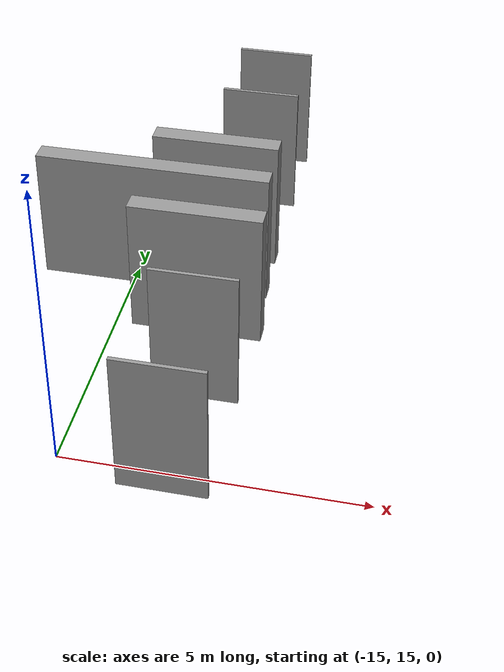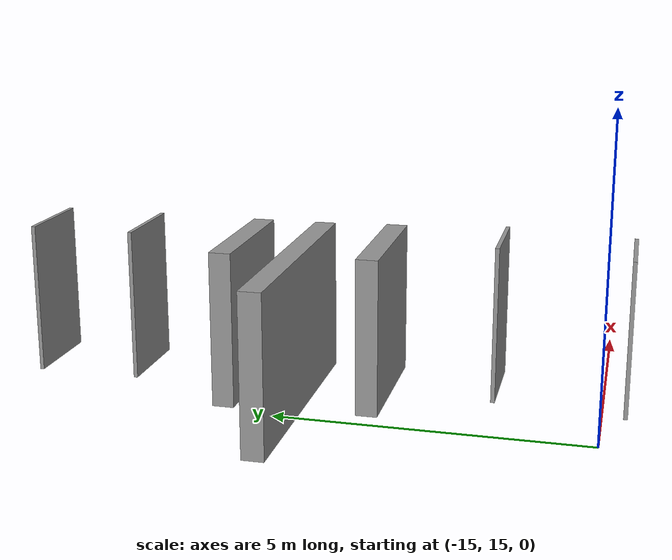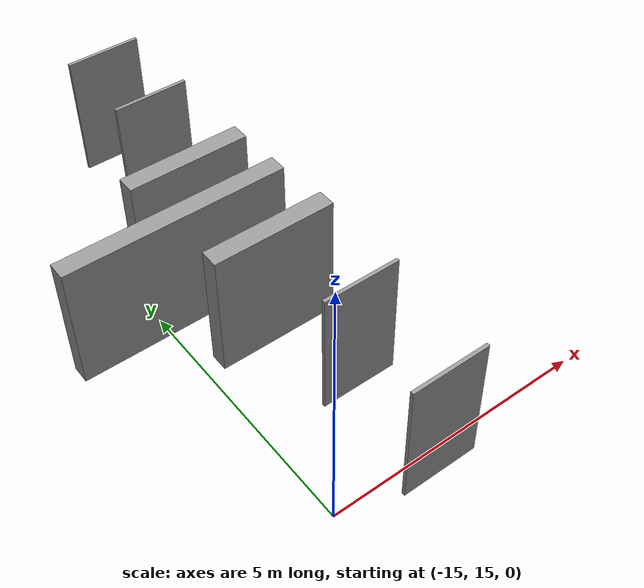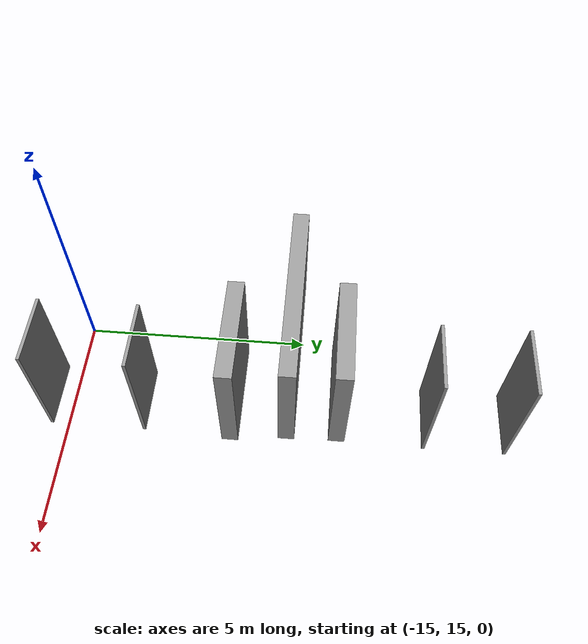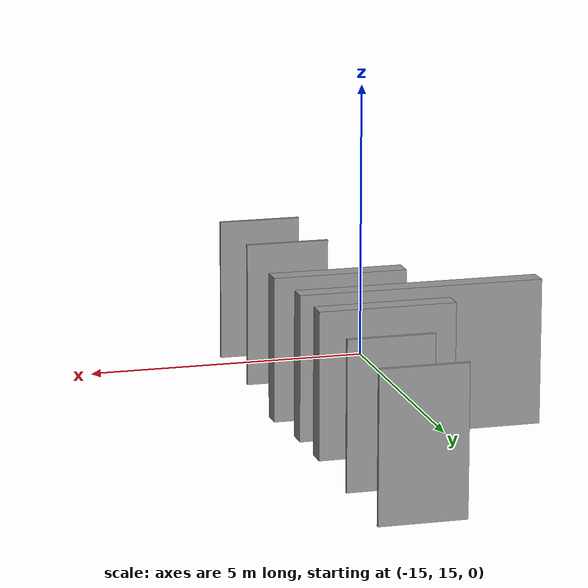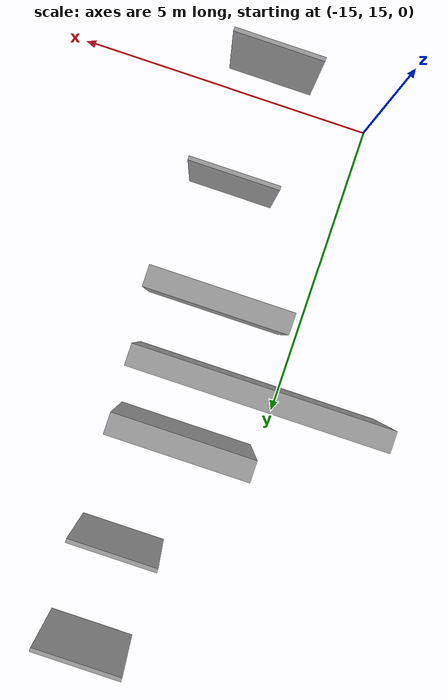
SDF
<sdf version="1.7">
 <world name="default">
  <model name="unit_box_clone_clone_0_clone">
   <pose>-13.2321 22.7198 1.27965 1e-05 1e-06 0.000654</pose>
   <link name="link">
    <inertial>
     <mass>1</mass>
     <inertia>
      <ixx>0.166667</ixx>
      <ixy>0</ixy>
      <ixz>0</ixz>
      <iyy>0.166667</iyy>
      <iyz>0</iyz>
      <izz>0.166667</izz>
     </inertia>
    </inertial>
    <collision name="collision"><geometry><box><size>1.45302 0.065809 2.52188</size></box></geometry></collision>
    <visual name="visual">
     <geometry><box><size>1.45302 0.065809 2.52188</size></box></geometry>
     <material>
      <script><name>Gazebo/Grey</name><uri>file://media/materials/scripts/gazebo.material</uri></script>
     </material>
    </visual>
   </link>
  </model>
  <model name="unit_box_clone_clone_0_clone_clone_1">
   <pose>-13.2378 24.4436 1.27965 1e-05 1e-06 0.000654</pose>
   <link name="link">
    <inertial>
     <mass>1</mass>
     <inertia>
      <ixx>0.166667</ixx>
      <ixy>0</ixy>
      <ixz>0</ixz>
      <iyy>0.166667</iyy>
      <iyz>0</iyz>
      <izz>0.166667</izz>
     </inertia>
    </inertial>
    <collision name="collision"><geometry><box><size>1.45302 0.065809 2.52188</size></box></geometry></collision>
    <visual name="visual">
     <geometry><box><size>1.45302 0.065809 2.52188</size></box></geometry>
     <material>
      <script><name>Gazebo/Grey</name><uri>file://media/materials/scripts/gazebo.material</uri></script>
     </material>
    </visual>
   </link>
  </model>
  <model name="unit_box_clone_clone_0_clone_clone_2">
   <pose>-13.694 20.8525 1.27965 1e-05 1e-06 0.000654</pose>
   <link name="link">
    <inertial>
     <mass>1</mass>
     <inertia>
      <ixx>0.166667</ixx>
      <ixy>0</ixy>
      <ixz>0</ixz>
      <iyy>0.166667</iyy>
      <iyz>0</iyz>
      <izz>0.166667</izz>
     </inertia>
    </inertial>
    <collision name="collision"><geometry><box><size>2.32458 0.352126 2.52188</size></box></geometry></collision>
    <visual name="visual">
     <geometry><box><size>2.32458 0.352126 2.52188</size></box></geometry>
     <material>
      <script><name>Gazebo/Grey</name><uri>file://media/materials/scripts/gazebo.material</uri></script>
     </material>
    </visual>
   </link>
  </model>
  <model name="unit_box_clone_clone_0_clone_clone_2_clone">
   <pose>-13.545 18.5635 1.27965 1e-05 1e-06 0.000654</pose>
   <link name="link">
    <inertial>
     <mass>1</mass>
     <inertia>
      <ixx>0.166667</ixx>
      <ixy>0</ixy>
      <ixz>0</ixz>
      <iyy>0.166667</iyy>
      <iyz>0</iyz>
      <izz>0.166667</izz>
     </inertia>
    </inertial>
    <collision name="collision"><geometry><box><size>2.32458 0.352126 2.52188</size></box></geometry></collision>
    <visual name="visual">
     <geometry><box><size>2.32458 0.352126 2.52188</size></box></geometry>
     <material>
      <script><name>Gazebo/Grey</name><uri>file://media/materials/scripts/gazebo.material</uri></script>
     </material>
    </visual>
   </link>
  </model>
  <model name="unit_box_clone_clone_0_clone_clone">
   <pose>-13.1613 16.6981 1.36875 0 -0 0</pose>
   <link name="link">
    <inertial>
     <mass>1</mass>
     <inertia>
      <ixx>0.166667</ixx>
      <ixy>0</ixy>
      <ixz>0</ixz>
      <iyy>0.166667</iyy>
      <iyz>0</iyz>
      <izz>0.166667</izz>
     </inertia>
    </inertial>
    <collision name="collision"><geometry><box><size>1.45302 0.065809 2.52188</size></box></geometry></collision>
    <visual name="visual">
     <geometry><box><size>1.45302 0.065809 2.52188</size></box></geometry>
     <material>
      <script><name>Gazebo/Grey</name><uri>file://media/materials/scripts/gazebo.material</uri></script>
     </material>
    </visual>
   </link>
  </model>
  <model name="unit_box_clone_clone_0_clone_clone_0">
   <pose>-13.1945 14.6389 1.29655 0 -0 0</pose>
   <link name="link">
    <inertial>
     <mass>1</mass>
     <inertia>
      <ixx>0.166667</ixx>
      <ixy>0</ixy>
      <ixz>0</ixz>
      <iyy>0.166667</iyy>
      <iyz>0</iyz>
      <izz>0.166667</izz>
     </inertia>
    </inertial>
    <collision name="collision"><geometry><box><size>1.45302 0.065809 2.52188</size></box></geometry></collision>
    <visual name="visual">
     <geometry><box><size>1.45302 0.065809 2.52188</size></box></geometry>
     <material>
      <script><name>Gazebo/Grey</name><uri>file://media/materials/scripts/gazebo.material</uri></script>
     </material>
    </visual>
   </link>
  </model>
  <model name="unit_box_clone_clone_0_clone_clone_2_clone_0">
   <pose>-14.608 19.7694 1.27965 1e-05 1e-06 0.000654</pose>
   <link name="link">
    <inertial>
     <mass>1</mass>
     <inertia>
      <ixx>0.166667</ixx>
      <ixy>0</ixy>
      <ixz>0</ixz>
      <iyy>0.166667</iyy>
      <iyz>0</iyz>
      <izz>0.166667</izz>
     </inertia>
    </inertial>
    <collision name="collision"><geometry><box><size>4.20858 0.352126 2.52188</size></box></geometry></collision>
    <visual name="visual">
     <geometry><box><size>4.20858 0.352126 2.52188</size></box></geometry>
     <material>
      <script><name>Gazebo/Grey</name><uri>file://media/materials/scripts/gazebo.material</uri></script>
     </material>
    </visual>
   </link>
  </model>
 </world>
</sdf>
